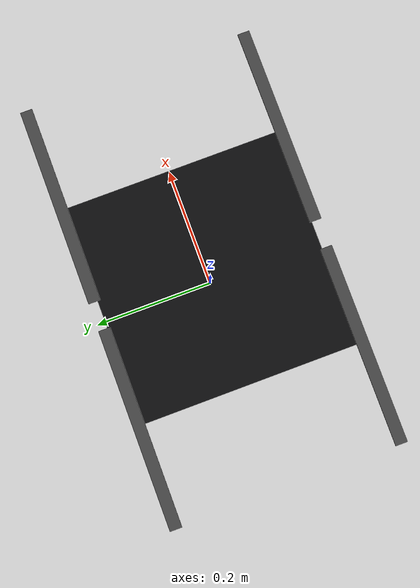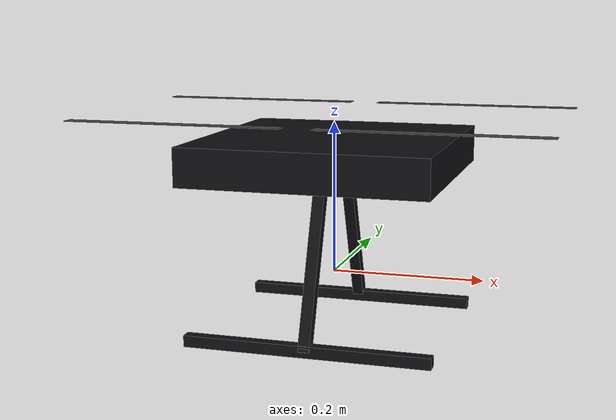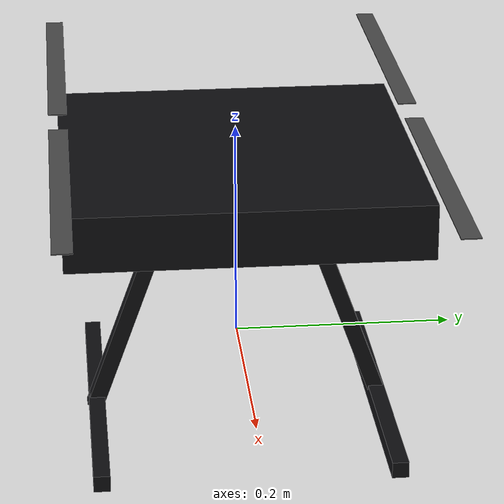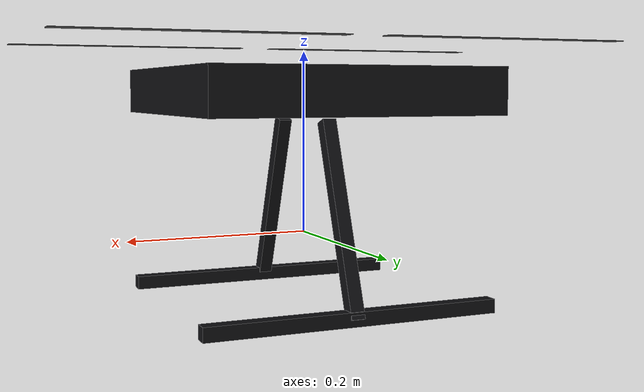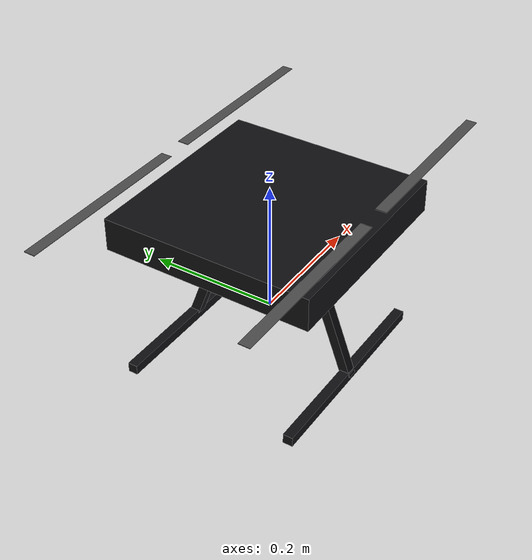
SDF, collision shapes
<?xml version="1.0" encoding="UTF-8"?>
<sdf version='1.9'>
  <model name='f450'>
    <include merge='true'>
      <uri>model://f450_base</uri>
    </include>
    <plugin filename="gz-sim-multicopter-motor-model-system" name="gz::sim::systems::MulticopterMotorModel">
      <jointName>rotor_0_joint</jointName>
      <linkName>rotor_0</linkName>
      <turningDirection>ccw</turningDirection>
      <timeConstantUp>0.0125</timeConstantUp>
      <timeConstantDown>0.025</timeConstantDown>
      <maxRotVelocity>1000.0</maxRotVelocity>
      <motorConstant>8.54858e-06</motorConstant>
      <momentConstant>0.016</momentConstant>
      <commandSubTopic>command/motor_speed</commandSubTopic>
      <motorNumber>0</motorNumber>
      <rotorDragCoefficient>8.06428e-05</rotorDragCoefficient>
      <rollingMomentCoefficient>1e-06</rollingMomentCoefficient>
      <rotorVelocitySlowdownSim>10</rotorVelocitySlowdownSim>
      <motorType>velocity</motorType>
    </plugin>
    <plugin filename="gz-sim-multicopter-motor-model-system" name="gz::sim::systems::MulticopterMotorModel">
      <jointName>rotor_1_joint</jointName>
      <linkName>rotor_1</linkName>
      <turningDirection>ccw</turningDirection>
      <timeConstantUp>0.0125</timeConstantUp>
      <timeConstantDown>0.025</timeConstantDown>
      <maxRotVelocity>1000.0</maxRotVelocity>
      <motorConstant>8.54858e-06</motorConstant>
      <momentConstant>0.016</momentConstant>
      <commandSubTopic>command/motor_speed</commandSubTopic>
      <motorNumber>1</motorNumber>
      <rotorDragCoefficient>8.06428e-05</rotorDragCoefficient>
      <rollingMomentCoefficient>1e-06</rollingMomentCoefficient>
      <rotorVelocitySlowdownSim>10</rotorVelocitySlowdownSim>
      <motorType>velocity</motorType>
    </plugin>
    <plugin filename="gz-sim-multicopter-motor-model-system" name="gz::sim::systems::MulticopterMotorModel">
      <jointName>rotor_2_joint</jointName>
      <linkName>rotor_2</linkName>
      <turningDirection>cw</turningDirection>
      <timeConstantUp>0.0125</timeConstantUp>
      <timeConstantDown>0.025</timeConstantDown>
      <maxRotVelocity>1000.0</maxRotVelocity>
      <motorConstant>8.54858e-06</motorConstant>
      <momentConstant>0.016</momentConstant>
      <commandSubTopic>command/motor_speed</commandSubTopic>
      <motorNumber>2</motorNumber>
      <rotorDragCoefficient>8.06428e-05</rotorDragCoefficient>
      <rollingMomentCoefficient>1e-06</rollingMomentCoefficient>
      <rotorVelocitySlowdownSim>10</rotorVelocitySlowdownSim>
      <motorType>velocity</motorType>
    </plugin>
    <plugin filename="gz-sim-multicopter-motor-model-system" name="gz::sim::systems::MulticopterMotorModel">
      <jointName>rotor_3_joint</jointName>
      <linkName>rotor_3</linkName>
      <turningDirection>cw</turningDirection>
      <timeConstantUp>0.0125</timeConstantUp>
      <timeConstantDown>0.025</timeConstantDown>
      <maxRotVelocity>1000.0</maxRotVelocity>
      <motorConstant>8.54858e-06</motorConstant>
      <momentConstant>0.016</momentConstant>
      <commandSubTopic>command/motor_speed</commandSubTopic>
      <motorNumber>3</motorNumber>
      <rotorDragCoefficient>8.06428e-05</rotorDragCoefficient>
      <rollingMomentCoefficient>1e-06</rollingMomentCoefficient>
      <rotorVelocitySlowdownSim>10</rotorVelocitySlowdownSim>
      <motorType>velocity</motorType>
    </plugin>
  </model>
</sdf>

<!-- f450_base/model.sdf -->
<sdf version='1.9'>
  <model name='f450_base'>
    <pose>0 0 .15 0 0 0</pose>
    <self_collide>false</self_collide>
    <static>false</static>
    <link name="base_link">
      <inertial>
        <mass>1.5</mass>
        <inertia>
          <ixx>0.02166666666666667</ixx>
          <ixy>0</ixy>
          <ixz>0</ixz>
          <iyy>0.02166666666666667</iyy>
          <iyz>0</iyz>
          <izz>0.04000000000000001</izz>
        </inertia>
      </inertial>
      <gravity>true</gravity>
      <velocity_decay/>
      <visual name="base_link_visual">
        <pose>0 0 0.02 0 0 -.125861774</pose>
        <geometry>
          <mesh>
            <scale>1 1 1</scale>
            <uri>model://f450_base/meshes/F450-base.STL</uri>
          </mesh>
        </geometry>
        <material>
          <ambient>0.04 0.04 0.05 1</ambient>
          <diffuse>0.06 0.06 0.07 1</diffuse>
          <specular>0.5 0.5 0.5 1</specular>
          <pbr>
            <metal>
              <metalness>0.7</metalness>
              <roughness>0.35</roughness>
            </metal>
          </pbr>
        </material>
      </visual>
      <collision name="base_link_collision_0">
        <pose>0 0 .007 0 0 0</pose>
        <geometry>
          <box>
            <size>0.318 0.318 0.05</size>
          </box>
        </geometry>
        <surface>
          <contact>
            <ode>
              <min_depth>0.001</min_depth>
              <max_vel>0</max_vel>
            </ode>
          </contact>
          <friction>
            <ode/>
          </friction>
        </surface>
      </collision>
      <collision name="base_link_collision_1">
        <pose>0 -0.098 -.123 -0.35 0 0</pose>
        <geometry>
          <box>
            <size>0.015 0.015 0.21</size>
          </box>
        </geometry>
        <surface>
          <contact>
            <ode>
              <min_depth>0.001</min_depth>
              <max_vel>0</max_vel>
            </ode>
          </contact>
          <friction>
            <ode/>
          </friction>
        </surface>
      </collision>
      <collision name="base_link_collision_2">
        <pose>0 0.098 -.123 0.35 0 0</pose>
        <geometry>
          <box>
            <size>0.015 0.015 0.21</size>
          </box>
        </geometry>
        <surface>
          <contact>
            <ode>
              <min_depth>0.001</min_depth>
              <max_vel>0</max_vel>
            </ode>
          </contact>
          <friction>
            <ode/>
          </friction>
        </surface>
      </collision>
      <collision name="base_link_collision_3">
        <pose>0 -0.132 -.2195 0 0 0</pose>
        <geometry>
          <box>
            <size>0.32 0.015 0.015</size>
          </box>
        </geometry>
        <surface>
          <contact>
            <ode>
              <min_depth>0.001</min_depth>
              <max_vel>0</max_vel>
            </ode>
          </contact>
          <friction>
            <ode/>
          </friction>
        </surface>
      </collision>
      <collision name="base_link_collision_4">
        <pose>0 0.132 -.2195 0 0 0</pose>
        <geometry>
          <box>
            <size>0.32 0.015 0.015</size>
          </box>
        </geometry>
        <surface>
          <contact>
            <ode>
              <min_depth>0.001</min_depth>
              <max_vel>0</max_vel>
            </ode>
          </contact>
          <friction>
            <ode/>
          </friction>
        </surface>
      </collision>
      <sensor name="air_pressure_sensor" type="air_pressure">
        <always_on>1</always_on>
        <update_rate>50</update_rate>
        <air_pressure>
          <!-- Noise modeled after BMP390 -->
          <pressure>
            <noise type="gaussian">
              <mean>0</mean>
              <stddev>3</stddev>
            </noise>
          </pressure>
        </air_pressure>
      </sensor>
      <sensor name="magnetometer_sensor" type="magnetometer">
        <always_on>1</always_on>
        <update_rate>100</update_rate>
        <magnetometer>
          <!-- TODO: update to fix units and coordinate system when we move past Harmonic -->
          <!-- See https://github.com/gazebosim/gz-sim/pull/2460 -->
          <!-- 3mgauss RMS: NOTE: noise is in tesla but sensor reports data in gauss -->
          <!-- Noise modeled after IIS2MDC -->
          <x>
            <noise type="gaussian">
              <stddev>0.0001</stddev>
            </noise>
          </x>
          <y>
            <noise type="gaussian">
              <stddev>0.0001</stddev>
            </noise>
          </y>
          <z>
            <noise type="gaussian">
              <stddev>0.0001</stddev>
            </noise>
          </z>
        </magnetometer>
      </sensor>

      <sensor name="imu_perfect" type="imu">
        <always_on>1</always_on>
        <update_rate>250</update_rate>
        <imu>
          <angular_velocity>
            <!-- Noise modeled after IIM42653 -->
            <!-- 0.05 deg/s converted to rad/s -->
            <x>
              <noise type="gaussian">
                <mean>0.0</mean>
                <stddev>0.0008726646</stddev>
              </noise>
            </x>
            <y>
              <noise type="gaussian">
                <mean>0.0</mean>
                <stddev>0.0008726646</stddev>
              </noise>
            </y>
            <z>
              <noise type="gaussian">
                <mean>0.0</mean>
                <stddev>0.0008726646</stddev>
              </noise>
            </z>
          </angular_velocity>
          <linear_acceleration>
            <!-- Noise modeled after IIM42653 -->
            <!-- X & Y axis: 0.65 mg-rms converted to m/ss -->
            <x>
              <noise type="gaussian">
                <mean>0.0</mean>
                <stddev>0.00637</stddev>
              </noise>
            </x>
            <y>
              <noise type="gaussian">
                <mean>0.0</mean>
                <stddev>0.00637</stddev>
              </noise>
            </y>
            <!-- Z axis: 0.70 mg-rms converted to m/ss-->
            <z>
              <noise type="gaussian">
                <mean>0.0</mean>
                <stddev>0.00686</stddev>
              </noise>
            </z>
          </linear_acceleration>
        </imu>
      </sensor>
      """
      <sensor name="imu_sensor" type="imu">
        <always_on>0</always_on>
        <update_rate>250</update_rate>
        <imu>
          <angular_velocity>
            <!-- Noise modeled after IIM42653 -->
            <!-- 0.05 deg/s converted to rad/s -->
            <x>
              <noise type="gaussian">
                <mean>0.0</mean>
                <stddev>0.0008</stddev>
              </noise>
            </x>
            <y>
              <noise type="gaussian">
                <mean>0.0</mean>
                <stddev>0.0008</stddev>
              </noise>
            </y>
            <z>
              <noise type="gaussian">
                <mean>0.0</mean>
                <stddev>0.0008</stddev>
              </noise>
            </z>
          </angular_velocity>
          <linear_acceleration>
            <!-- Noise modeled after IIM42653 -->
            <!-- X & Y axis: 0.65 mg-rms converted to m/ss -->
            <x>
              <noise type="gaussian">
                <mean>0.0</mean>
                <stddev>0.0065</stddev>
              </noise>
            </x>
            <y>
              <noise type="gaussian">
                <mean>0.2</mean>
                <stddev>0.0065</stddev>
              </noise>
            </y>
            <!-- Z axis: 0.70 mg-rms converted to m/ss-->
            <z>
              <noise type="gaussian">
                <mean>0.2</mean>
                <stddev>0.006</stddev>
              </noise>
            </z>
          </linear_acceleration>
        </imu>
       </sensor>

      <sensor name="navsat_sensor" type="navsat">
        <always_on>1</always_on>
        <update_rate>20</update_rate> <!-- M9N max nav rate -->
        <navsat>
          <position_sensing>
            <horizontal>
              <noise type="gaussian">
                <mean>0.0</mean>
                <stddev>0.0000002</stddev>                         <!-- white ~0.022 m: small fix-to-fix jitter -->
                <dynamic_bias_stddev>0.0000016</dynamic_bias_stddev> <!-- steady ~1.5 m abs (0.0000016*sqrt(75)*111320) -->
                <dynamic_bias_correlation_time>150.0</dynamic_bias_correlation_time> <!-- slow wander, seconds -->
              </noise>
            </horizontal>
            <vertical>
              <noise type="gaussian">
                <mean>0.0</mean>
                <stddev>0.05</stddev>                              <!-- white 0.05 m -->
                <dynamic_bias_stddev>0.35</dynamic_bias_stddev>    <!-- steady ~3.0 m abs (0.35*sqrt(75)) -->
                <dynamic_bias_correlation_time>150.0</dynamic_bias_correlation_time>
              </noise>
            </vertical>
          </position_sensing>
          <velocity_sensing>
            <horizontal>
              <noise type="gaussian">
                <mean>0.0</mean>
                <stddev>0.05</stddev>           <!-- m/s, M9N velocity accuracy -->
              </noise>
            </horizontal>
            <vertical>
              <noise type="gaussian">
                <mean>0.0</mean>
                <stddev>0.10</stddev>           <!-- m/s, vertical velocity error -->
              </noise>
            </vertical>
          </velocity_sensing>
        </navsat>
      </sensor>

      <!-- Ground-truth GPS: PX4 does NOT read this (different name), no noise. For logging/comparison. -->
      <sensor name="navsat_ground_truth" type="navsat">
        <always_on>1</always_on>
        <update_rate>20</update_rate>
      </sensor>

    </link>
    <link name="rotor_0">
      <gravity>true</gravity>
      <self_collide>false</self_collide>
      <velocity_decay/>
      <pose>0.159 -0.159 0.06 0 0 0</pose>
      <inertial>
          <mass>0.016076923076923075</mass>
          <inertia>
            <ixx>3.8464910483993325e-07</ixx>
            <iyy>2.6115851691700804e-05</iyy>
            <izz>2.649858234714004e-05</izz>
          </inertia>
        </inertial>
      <visual name="rotor_0_visual">
        <pose>0 0 0 0 0 0</pose>
        <geometry>
          <mesh>
            <scale>1 1 1</scale>
            <uri>model://f450_base/meshes/CCW-prob.STL</uri>
          </mesh>
        </geometry>
        <material>
          <script>
            <name>Gazebo/DarkGrey</name>
            <uri>file://media/materials/scripts/gazebo.material</uri>
          </script>
        </material>
      </visual>
      <collision name="rotor_0_collision">
        <pose>0 0 0 0 0 0 </pose>
        <geometry>
          <box>
            <size>0.2792307692307692 0.016923076923076923 0.0008461538461538462</size>
          </box>
        </geometry>
        <surface>
          <contact>
            <ode>
              <min_depth>0.001</min_depth>
              <max_vel>0</max_vel>
            </ode>
          </contact>
          <friction>
            <ode/>
          </friction>
        </surface>
      </collision>
    </link>
    <joint name="rotor_0_joint" type="revolute">
      <parent>base_link</parent>
      <child>rotor_0</child>
      <axis>
        <xyz>0 0 1</xyz>
        <limit>
          <lower>-1e+16</lower>
          <upper>1e+16</upper>
        </limit>
        <dynamics>
          <spring_reference>0</spring_reference>
          <spring_stiffness>0</spring_stiffness>
        </dynamics>
      </axis>
    </joint>
    <link name="rotor_1">
      <gravity>true</gravity>
      <self_collide>false</self_collide>
      <velocity_decay/>
      <pose>-0.159 0.159 0.06 0 0 0</pose>
      <inertial>
          <mass>0.016076923076923075</mass>
          <inertia>
            <ixx>3.8464910483993325e-07</ixx>
            <iyy>2.6115851691700804e-05</iyy>
            <izz>2.649858234714004e-05</izz>
          </inertia>
        </inertial>
      <visual name="rotor_1_visual">
        <pose>0 0 0 0 0 0</pose>
        <geometry>
          <mesh>
            <scale>1 1 1</scale>
            <uri>model://f450_base/meshes/CCW-prob.STL</uri>
          </mesh>
        </geometry>
        <material>
          <script>
            <name>Gazebo/DarkGrey</name>
            <uri>file://media/materials/scripts/gazebo.material</uri>
          </script>
        </material>
      </visual>
      <collision name="rotor_1_collision">
        <pose>0 0 0 0 0 0 </pose>
        <geometry>
          <box>
            <size>0.2792307692307692 0.016923076923076923 0.0008461538461538462</size>
          </box>
        </geometry>
        <surface>
          <contact>
            <ode>
              <min_depth>0.001</min_depth>
              <max_vel>0</max_vel>
            </ode>
          </contact>
          <friction>
            <ode/>
          </friction>
        </surface>
      </collision>
    </link>
    <joint name="rotor_1_joint" type="revolute">
      <parent>base_link</parent>
      <child>rotor_1</child>
      <axis>
        <xyz>0 0 1</xyz>
        <limit>
          <lower>-1e+16</lower>
          <upper>1e+16</upper>
        </limit>
        <dynamics>
          <spring_reference>0</spring_reference>
          <spring_stiffness>0</spring_stiffness>
        </dynamics>
      </axis>
    </joint>
    <link name="rotor_2">
      <gravity>true</gravity>
      <self_collide>false</self_collide>
      <velocity_decay/>
      <pose>0.159 0.159 0.06 0 0 0</pose>
      <inertial>
          <mass>0.016076923076923075</mass>
          <inertia>
            <ixx>3.8464910483993325e-07</ixx>
            <iyy>2.6115851691700804e-05</iyy>
            <izz>2.649858234714004e-05</izz>
          </inertia>
        </inertial>
      <visual name="rotor_2_visual">
        <pose>0 0 0 0 0 0</pose>
        <geometry>
          <mesh>
            <scale>1 1 1</scale>
            <uri>model://f450_base/meshes/CW-prob.STL</uri>
          </mesh>
        </geometry>
        <material>
          <script>
            <name>Gazebo/DarkGrey</name>
            <uri>file://media/materials/scripts/gazebo.material</uri>
          </script>
        </material>
      </visual>
      <collision name="rotor_2_collision">
        <pose>0 0 0 0 0 0 </pose>
        <geometry>
          <box>
            <size>0.2792307692307692 0.016923076923076923 0.0008461538461538462</size>
          </box>
        </geometry>
        <surface>
          <contact>
            <ode>
              <min_depth>0.001</min_depth>
              <max_vel>0</max_vel>
            </ode>
          </contact>
          <friction>
            <ode/>
          </friction>
        </surface>
      </collision>
    </link>
    <joint name="rotor_2_joint" type="revolute">
      <parent>base_link</parent>
      <child>rotor_2</child>
      <axis>
        <xyz>0 0 1</xyz>
        <limit>
          <lower>-1e+16</lower>
          <upper>1e+16</upper>
        </limit>
        <dynamics>
          <spring_reference>0</spring_reference>
          <spring_stiffness>0</spring_stiffness>
        </dynamics>
      </axis>
    </joint>
    <link name="rotor_3">
      <gravity>true</gravity>
      <self_collide>false</self_collide>
      <velocity_decay/>
      <pose>-0.159 -0.159 0.06 0 0 0</pose>
      <inertial>
          <mass>0.016076923076923075</mass>
          <inertia>
            <ixx>3.8464910483993325e-07</ixx>
            <iyy>2.6115851691700804e-05</iyy>
            <izz>2.649858234714004e-05</izz>
          </inertia>
        </inertial>
      <visual name="rotor_3_visual">
        <pose>0 0 0 0 0 0</pose>
        <geometry>
          <mesh>
            <scale>1 1 1</scale>
            <uri>model://f450_base/meshes/CW-prob.STL</uri>
          </mesh>
        </geometry>
        <material>
          <script>
            <name>Gazebo/DarkGrey</name>
            <uri>file://media/materials/scripts/gazebo.material</uri>
          </script>
        </material>
      </visual>
      <collision name="rotor_3_collision">
        <pose>0 0 0 0 0 0 </pose>
        <geometry>
          <box>
            <size>0.2792307692307692 0.016923076923076923 0.0008461538461538462</size>
          </box>
        </geometry>
        <surface>
          <contact>
            <ode>
              <min_depth>0.001</min_depth>
              <max_vel>0</max_vel>
            </ode>
          </contact>
          <friction>
            <ode/>
          </friction>
        </surface>
      </collision>
    </link>
    <joint name="rotor_3_joint" type="revolute">
      <parent>base_link</parent>
      <child>rotor_3</child>
      <axis>
        <xyz>0 0 1</xyz>
        <limit>
          <lower>-1e+16</lower>
          <upper>1e+16</upper>
        </limit>
        <dynamics>
          <spring_reference>0</spring_reference>
          <spring_stiffness>0</spring_stiffness>
        </dynamics>
      </axis>
    </joint>

    <!-- UWB anchor include (attached to base_link) -->
    <plugin
      filename="gz-sim-odometry-publisher-system"
      name="gz::sim::systems::OdometryPublisher">
      <odom_topic>/model/f450/odometry</odom_topic>
      <odom_frame>world</odom_frame>
      <robot_base_frame>base_link</robot_base_frame>
      <dimensions>3</dimensions>
    </plugin>

  </model>
</sdf>
